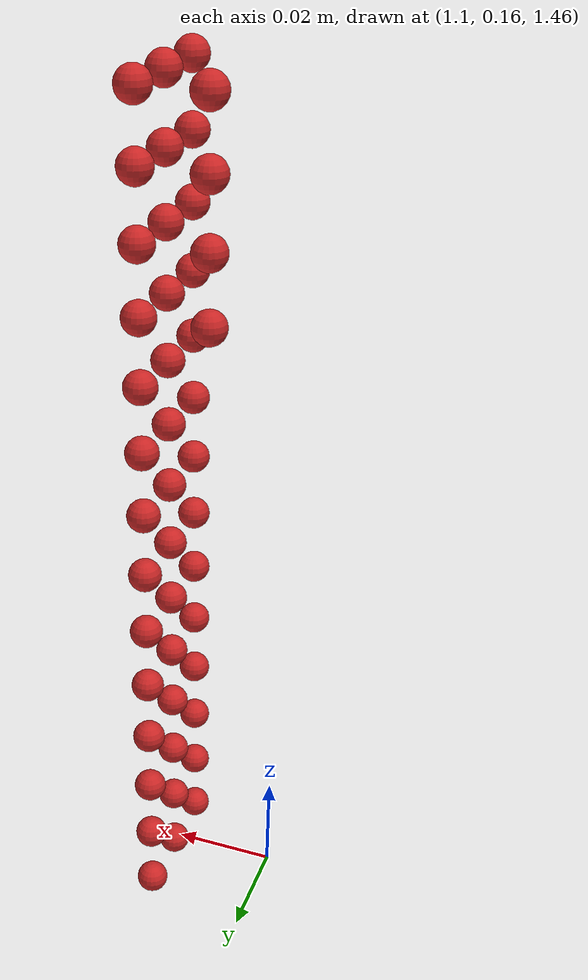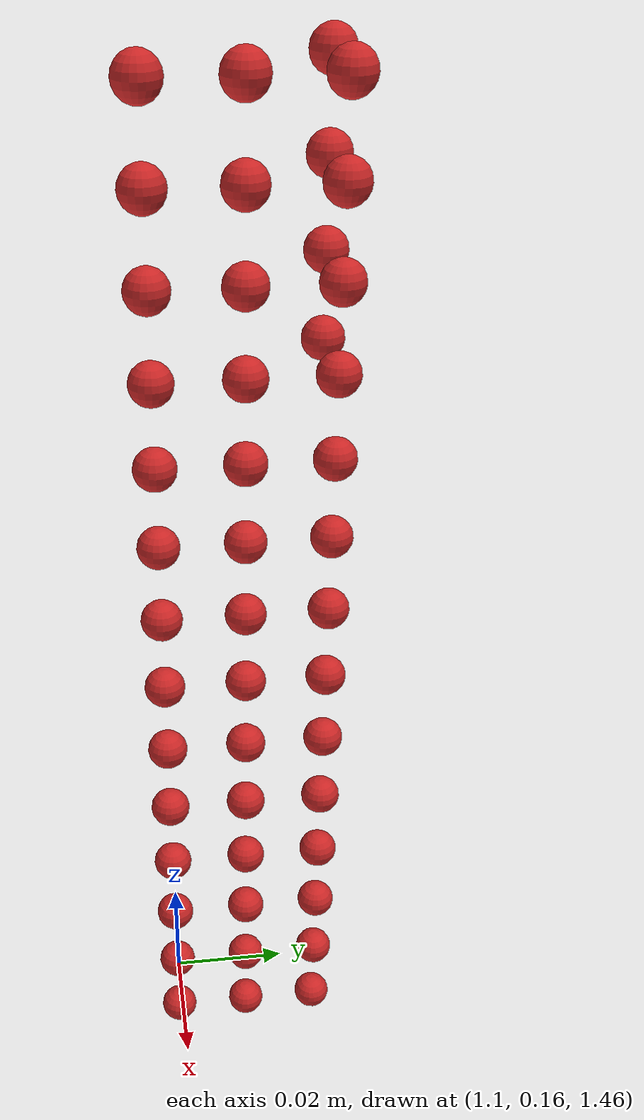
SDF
<sdf version="1.4">
 <world name="default">
  <model name="ground_plane">
   <static>1</static>
   <link name="link">
    <collision name="collision">
     <geometry><plane><normal>0 0 1</normal><size>100 100</size></plane></geometry>
     <surface><friction><ode><mu>100</mu><mu2>50</mu2></ode></friction></surface>
    </collision>
    <visual name="visual">
     <cast_shadows>0</cast_shadows>
     <geometry><plane><normal>0 0 1</normal><size>100 100</size></plane></geometry>
     <material>
      <script><uri>file://media/materials/scripts/gazebo.material</uri><name>Gazebo/Grey</name></script>
     </material>
    </visual>
    <velocity_decay><linear>0</linear><angular>0</angular></velocity_decay>
   </link>
  </model>
  <model name="sphere7">
   <pose>0.564545 0.085517 0.734885 0 0 0</pose>
   <link name="link">
    <pose>0.552545 0.073517 0.734885 0 0 0</pose>
    <inertial>
     <mass>0.001</mass>
     <inertia>
      <ixx>0.004</ixx>
      <ixy>0.000000</ixy>
      <ixz>0.000000</ixz>
      <iyy>0.004</iyy>
      <iyz>0.000000</iyz>
      <izz>0.004</izz>
     </inertia>
    </inertial>
    <collision name="collision">
     <surface>
      <contact><ode><kp>10000000000.000000</kp><kd>1</kd></ode></contact>
      <friction><ode><mu>0.01</mu><mu2>0.01</mu2></ode></friction>
     </surface>
     <geometry><sphere><radius>0.003</radius></sphere></geometry>
    </collision>
    <visual name="visual">
     <geometry><sphere><radius>0.003</radius></sphere></geometry>
     <material>
      <script><uri>file://media/materials/scripts/gazebo.material</uri><name>Gazebo/Red</name></script>
     </material>
    </visual>
   </link>
  </model>
  <model name="sphere11">
   <pose>0.564545 0.091517 0.734885 0 0 0</pose>
   <link name="link">
    <pose>0.552545 0.079517 0.734885 0 0 0</pose>
    <inertial>
     <mass>0.001</mass>
     <inertia>
      <ixx>0.004</ixx>
      <ixy>0.000000</ixy>
      <ixz>0.000000</ixz>
      <iyy>0.004</iyy>
      <iyz>0.000000</iyz>
      <izz>0.004</izz>
     </inertia>
    </inertial>
    <collision name="collision">
     <surface>
      <contact><ode><kp>10000000000.000000</kp><kd>1</kd></ode></contact>
      <friction><ode><mu>0.01</mu><mu2>0.01</mu2></ode></friction>
     </surface>
     <geometry><sphere><radius>0.003</radius></sphere></geometry>
    </collision>
    <visual name="visual">
     <geometry><sphere><radius>0.003</radius></sphere></geometry>
     <material>
      <script><uri>file://media/materials/scripts/gazebo.material</uri><name>Gazebo/Red</name></script>
     </material>
    </visual>
   </link>
  </model>
  <model name="sphere15">
   <pose>0.564545 0.097517 0.734885 0 0 0</pose>
   <link name="link">
    <pose>0.552545 0.085517 0.734885 0 0 0</pose>
    <inertial>
     <mass>0.001</mass>
     <inertia>
      <ixx>0.004</ixx>
      <ixy>0.000000</ixy>
      <ixz>0.000000</ixz>
      <iyy>0.004</iyy>
      <iyz>0.000000</iyz>
      <izz>0.004</izz>
     </inertia>
    </inertial>
    <collision name="collision">
     <surface>
      <contact><ode><kp>10000000000.000000</kp><kd>1</kd></ode></contact>
      <friction><ode><mu>0.01</mu><mu2>0.01</mu2></ode></friction>
     </surface>
     <geometry><sphere><radius>0.003</radius></sphere></geometry>
    </collision>
    <visual name="visual">
     <geometry><sphere><radius>0.003</radius></sphere></geometry>
     <material>
      <script><uri>file://media/materials/scripts/gazebo.material</uri><name>Gazebo/Red</name></script>
     </material>
    </visual>
   </link>
  </model>
  <model name="sphere23">
   <pose>0.564545 0.085517 0.740885 0 0 0</pose>
   <link name="link">
    <pose>0.552545 0.073517 0.740885 0 0 0</pose>
    <inertial>
     <mass>0.001</mass>
     <inertia>
      <ixx>0.004</ixx>
      <ixy>0.000000</ixy>
      <ixz>0.000000</ixz>
      <iyy>0.004</iyy>
      <iyz>0.000000</iyz>
      <izz>0.004</izz>
     </inertia>
    </inertial>
    <collision name="collision">
     <surface>
      <contact><ode><kp>10000000000.000000</kp><kd>1</kd></ode></contact>
      <friction><ode><mu>0.01</mu><mu2>0.01</mu2></ode></friction>
     </surface>
     <geometry><sphere><radius>0.003</radius></sphere></geometry>
    </collision>
    <visual name="visual">
     <geometry><sphere><radius>0.003</radius></sphere></geometry>
     <material>
      <script><uri>file://media/materials/scripts/gazebo.material</uri><name>Gazebo/Red</name></script>
     </material>
    </visual>
   </link>
  </model>
  <model name="sphere27">
   <pose>0.564545 0.091517 0.740885 0 0 0</pose>
   <link name="link">
    <pose>0.552545 0.079517 0.740885 0 0 0</pose>
    <inertial>
     <mass>0.001</mass>
     <inertia>
      <ixx>0.004</ixx>
      <ixy>0.000000</ixy>
      <ixz>0.000000</ixz>
      <iyy>0.004</iyy>
      <iyz>0.000000</iyz>
      <izz>0.004</izz>
     </inertia>
    </inertial>
    <collision name="collision">
     <surface>
      <contact><ode><kp>10000000000.000000</kp><kd>1</kd></ode></contact>
      <friction><ode><mu>0.01</mu><mu2>0.01</mu2></ode></friction>
     </surface>
     <geometry><sphere><radius>0.003</radius></sphere></geometry>
    </collision>
    <visual name="visual">
     <geometry><sphere><radius>0.003</radius></sphere></geometry>
     <material>
      <script><uri>file://media/materials/scripts/gazebo.material</uri><name>Gazebo/Red</name></script>
     </material>
    </visual>
   </link>
  </model>
  <model name="sphere31">
   <pose>0.564545 0.097517 0.740885 0 0 0</pose>
   <link name="link">
    <pose>0.552545 0.085517 0.740885 0 0 0</pose>
    <inertial>
     <mass>0.001</mass>
     <inertia>
      <ixx>0.004</ixx>
      <ixy>0.000000</ixy>
      <ixz>0.000000</ixz>
      <iyy>0.004</iyy>
      <iyz>0.000000</iyz>
      <izz>0.004</izz>
     </inertia>
    </inertial>
    <collision name="collision">
     <surface>
      <contact><ode><kp>10000000000.000000</kp><kd>1</kd></ode></contact>
      <friction><ode><mu>0.01</mu><mu2>0.01</mu2></ode></friction>
     </surface>
     <geometry><sphere><radius>0.003</radius></sphere></geometry>
    </collision>
    <visual name="visual">
     <geometry><sphere><radius>0.003</radius></sphere></geometry>
     <material>
      <script><uri>file://media/materials/scripts/gazebo.material</uri><name>Gazebo/Red</name></script>
     </material>
    </visual>
   </link>
  </model>
  <model name="sphere39">
   <pose>0.564545 0.085517 0.746885 0 0 0</pose>
   <link name="link">
    <pose>0.552545 0.073517 0.746885 0 0 0</pose>
    <inertial>
     <mass>0.001</mass>
     <inertia>
      <ixx>0.004</ixx>
      <ixy>0.000000</ixy>
      <ixz>0.000000</ixz>
      <iyy>0.004</iyy>
      <iyz>0.000000</iyz>
      <izz>0.004</izz>
     </inertia>
    </inertial>
    <collision name="collision">
     <surface>
      <contact><ode><kp>10000000000.000000</kp><kd>1</kd></ode></contact>
      <friction><ode><mu>0.01</mu><mu2>0.01</mu2></ode></friction>
     </surface>
     <geometry><sphere><radius>0.003</radius></sphere></geometry>
    </collision>
    <visual name="visual">
     <geometry><sphere><radius>0.003</radius></sphere></geometry>
     <material>
      <script><uri>file://media/materials/scripts/gazebo.material</uri><name>Gazebo/Red</name></script>
     </material>
    </visual>
   </link>
  </model>
  <model name="sphere43">
   <pose>0.564545 0.091517 0.746885 0 0 0</pose>
   <link name="link">
    <pose>0.552545 0.079517 0.746885 0 0 0</pose>
    <inertial>
     <mass>0.001</mass>
     <inertia>
      <ixx>0.004</ixx>
      <ixy>0.000000</ixy>
      <ixz>0.000000</ixz>
      <iyy>0.004</iyy>
      <iyz>0.000000</iyz>
      <izz>0.004</izz>
     </inertia>
    </inertial>
    <collision name="collision">
     <surface>
      <contact><ode><kp>10000000000.000000</kp><kd>1</kd></ode></contact>
      <friction><ode><mu>0.01</mu><mu2>0.01</mu2></ode></friction>
     </surface>
     <geometry><sphere><radius>0.003</radius></sphere></geometry>
    </collision>
    <visual name="visual">
     <geometry><sphere><radius>0.003</radius></sphere></geometry>
     <material>
      <script><uri>file://media/materials/scripts/gazebo.material</uri><name>Gazebo/Red</name></script>
     </material>
    </visual>
   </link>
  </model>
  <model name="sphere47">
   <pose>0.564545 0.097517 0.746885 0 0 0</pose>
   <link name="link">
    <pose>0.552545 0.085517 0.746885 0 0 0</pose>
    <inertial>
     <mass>0.001</mass>
     <inertia>
      <ixx>0.004</ixx>
      <ixy>0.000000</ixy>
      <ixz>0.000000</ixz>
      <iyy>0.004</iyy>
      <iyz>0.000000</iyz>
      <izz>0.004</izz>
     </inertia>
    </inertial>
    <collision name="collision">
     <surface>
      <contact><ode><kp>10000000000.000000</kp><kd>1</kd></ode></contact>
      <friction><ode><mu>0.01</mu><mu2>0.01</mu2></ode></friction>
     </surface>
     <geometry><sphere><radius>0.003</radius></sphere></geometry>
    </collision>
    <visual name="visual">
     <geometry><sphere><radius>0.003</radius></sphere></geometry>
     <material>
      <script><uri>file://media/materials/scripts/gazebo.material</uri><name>Gazebo/Red</name></script>
     </material>
    </visual>
   </link>
  </model>
  <model name="sphere55">
   <pose>0.564545 0.085517 0.752885 0 0 0</pose>
   <link name="link">
    <pose>0.552545 0.073517 0.752885 0 0 0</pose>
    <inertial>
     <mass>0.001</mass>
     <inertia>
      <ixx>0.004</ixx>
      <ixy>0.000000</ixy>
      <ixz>0.000000</ixz>
      <iyy>0.004</iyy>
      <iyz>0.000000</iyz>
      <izz>0.004</izz>
     </inertia>
    </inertial>
    <collision name="collision">
     <surface>
      <contact><ode><kp>10000000000.000000</kp><kd>1</kd></ode></contact>
      <friction><ode><mu>0.01</mu><mu2>0.01</mu2></ode></friction>
     </surface>
     <geometry><sphere><radius>0.003</radius></sphere></geometry>
    </collision>
    <visual name="visual">
     <geometry><sphere><radius>0.003</radius></sphere></geometry>
     <material>
      <script><uri>file://media/materials/scripts/gazebo.material</uri><name>Gazebo/Red</name></script>
     </material>
    </visual>
   </link>
  </model>
  <model name="sphere59">
   <pose>0.564545 0.091517 0.752885 0 0 0</pose>
   <link name="link">
    <pose>0.552545 0.079517 0.752885 0 0 0</pose>
    <inertial>
     <mass>0.001</mass>
     <inertia>
      <ixx>0.004</ixx>
      <ixy>0.000000</ixy>
      <ixz>0.000000</ixz>
      <iyy>0.004</iyy>
      <iyz>0.000000</iyz>
      <izz>0.004</izz>
     </inertia>
    </inertial>
    <collision name="collision">
     <surface>
      <contact><ode><kp>10000000000.000000</kp><kd>1</kd></ode></contact>
      <friction><ode><mu>0.01</mu><mu2>0.01</mu2></ode></friction>
     </surface>
     <geometry><sphere><radius>0.003</radius></sphere></geometry>
    </collision>
    <visual name="visual">
     <geometry><sphere><radius>0.003</radius></sphere></geometry>
     <material>
      <script><uri>file://media/materials/scripts/gazebo.material</uri><name>Gazebo/Red</name></script>
     </material>
    </visual>
   </link>
  </model>
  <model name="sphere63">
   <pose>0.564545 0.097517 0.752885 0 0 0</pose>
   <link name="link">
    <pose>0.552545 0.085517 0.752885 0 0 0</pose>
    <inertial>
     <mass>0.001</mass>
     <inertia>
      <ixx>0.004</ixx>
      <ixy>0.000000</ixy>
      <ixz>0.000000</ixz>
      <iyy>0.004</iyy>
      <iyz>0.000000</iyz>
      <izz>0.004</izz>
     </inertia>
    </inertial>
    <collision name="collision">
     <surface>
      <contact><ode><kp>10000000000.000000</kp><kd>1</kd></ode></contact>
      <friction><ode><mu>0.01</mu><mu2>0.01</mu2></ode></friction>
     </surface>
     <geometry><sphere><radius>0.003</radius></sphere></geometry>
    </collision>
    <visual name="visual">
     <geometry><sphere><radius>0.003</radius></sphere></geometry>
     <material>
      <script><uri>file://media/materials/scripts/gazebo.material</uri><name>Gazebo/Red</name></script>
     </material>
    </visual>
   </link>
  </model>
  <model name="sphere71">
   <pose>0.564545 0.085517 0.758885 0 0 0</pose>
   <link name="link">
    <pose>0.552545 0.073517 0.758885 0 0 0</pose>
    <inertial>
     <mass>0.001</mass>
     <inertia>
      <ixx>0.004</ixx>
      <ixy>0.000000</ixy>
      <ixz>0.000000</ixz>
      <iyy>0.004</iyy>
      <iyz>0.000000</iyz>
      <izz>0.004</izz>
     </inertia>
    </inertial>
    <collision name="collision">
     <surface>
      <contact><ode><kp>10000000000.000000</kp><kd>1</kd></ode></contact>
      <friction><ode><mu>0.01</mu><mu2>0.01</mu2></ode></friction>
     </surface>
     <geometry><sphere><radius>0.003</radius></sphere></geometry>
    </collision>
    <visual name="visual">
     <geometry><sphere><radius>0.003</radius></sphere></geometry>
     <material>
      <script><uri>file://media/materials/scripts/gazebo.material</uri><name>Gazebo/Red</name></script>
     </material>
    </visual>
   </link>
  </model>
  <model name="sphere75">
   <pose>0.564545 0.091517 0.758885 0 0 0</pose>
   <link name="link">
    <pose>0.552545 0.079517 0.758885 0 0 0</pose>
    <inertial>
     <mass>0.001</mass>
     <inertia>
      <ixx>0.004</ixx>
      <ixy>0.000000</ixy>
      <ixz>0.000000</ixz>
      <iyy>0.004</iyy>
      <iyz>0.000000</iyz>
      <izz>0.004</izz>
     </inertia>
    </inertial>
    <collision name="collision">
     <surface>
      <contact><ode><kp>10000000000.000000</kp><kd>1</kd></ode></contact>
      <friction><ode><mu>0.01</mu><mu2>0.01</mu2></ode></friction>
     </surface>
     <geometry><sphere><radius>0.003</radius></sphere></geometry>
    </collision>
    <visual name="visual">
     <geometry><sphere><radius>0.003</radius></sphere></geometry>
     <material>
      <script><uri>file://media/materials/scripts/gazebo.material</uri><name>Gazebo/Red</name></script>
     </material>
    </visual>
   </link>
  </model>
  <model name="sphere79">
   <pose>0.564545 0.097517 0.758885 0 0 0</pose>
   <link name="link">
    <pose>0.552545 0.085517 0.758885 0 0 0</pose>
    <inertial>
     <mass>0.001</mass>
     <inertia>
      <ixx>0.004</ixx>
      <ixy>0.000000</ixy>
      <ixz>0.000000</ixz>
      <iyy>0.004</iyy>
      <iyz>0.000000</iyz>
      <izz>0.004</izz>
     </inertia>
    </inertial>
    <collision name="collision">
     <surface>
      <contact><ode><kp>10000000000.000000</kp><kd>1</kd></ode></contact>
      <friction><ode><mu>0.01</mu><mu2>0.01</mu2></ode></friction>
     </surface>
     <geometry><sphere><radius>0.003</radius></sphere></geometry>
    </collision>
    <visual name="visual">
     <geometry><sphere><radius>0.003</radius></sphere></geometry>
     <material>
      <script><uri>file://media/materials/scripts/gazebo.material</uri><name>Gazebo/Red</name></script>
     </material>
    </visual>
   </link>
  </model>
  <model name="sphere87">
   <pose>0.564545 0.085517 0.764885 0 0 0</pose>
   <link name="link">
    <pose>0.552545 0.073517 0.764885 0 0 0</pose>
    <inertial>
     <mass>0.001</mass>
     <inertia>
      <ixx>0.004</ixx>
      <ixy>0.000000</ixy>
      <ixz>0.000000</ixz>
      <iyy>0.004</iyy>
      <iyz>0.000000</iyz>
      <izz>0.004</izz>
     </inertia>
    </inertial>
    <collision name="collision">
     <surface>
      <contact><ode><kp>10000000000.000000</kp><kd>1</kd></ode></contact>
      <friction><ode><mu>0.01</mu><mu2>0.01</mu2></ode></friction>
     </surface>
     <geometry><sphere><radius>0.003</radius></sphere></geometry>
    </collision>
    <visual name="visual">
     <geometry><sphere><radius>0.003</radius></sphere></geometry>
     <material>
      <script><uri>file://media/materials/scripts/gazebo.material</uri><name>Gazebo/Red</name></script>
     </material>
    </visual>
   </link>
  </model>
  <model name="sphere91">
   <pose>0.564545 0.091517 0.764885 0 0 0</pose>
   <link name="link">
    <pose>0.552545 0.079517 0.764885 0 0 0</pose>
    <inertial>
     <mass>0.001</mass>
     <inertia>
      <ixx>0.004</ixx>
      <ixy>0.000000</ixy>
      <ixz>0.000000</ixz>
      <iyy>0.004</iyy>
      <iyz>0.000000</iyz>
      <izz>0.004</izz>
     </inertia>
    </inertial>
    <collision name="collision">
     <surface>
      <contact><ode><kp>10000000000.000000</kp><kd>1</kd></ode></contact>
      <friction><ode><mu>0.01</mu><mu2>0.01</mu2></ode></friction>
     </surface>
     <geometry><sphere><radius>0.003</radius></sphere></geometry>
    </collision>
    <visual name="visual">
     <geometry><sphere><radius>0.003</radius></sphere></geometry>
     <material>
      <script><uri>file://media/materials/scripts/gazebo.material</uri><name>Gazebo/Red</name></script>
     </material>
    </visual>
   </link>
  </model>
  <model name="sphere95">
   <pose>0.564545 0.097517 0.764885 0 0 0</pose>
   <link name="link">
    <pose>0.552545 0.085517 0.764885 0 0 0</pose>
    <inertial>
     <mass>0.001</mass>
     <inertia>
      <ixx>0.004</ixx>
      <ixy>0.000000</ixy>
      <ixz>0.000000</ixz>
      <iyy>0.004</iyy>
      <iyz>0.000000</iyz>
      <izz>0.004</izz>
     </inertia>
    </inertial>
    <collision name="collision">
     <surface>
      <contact><ode><kp>10000000000.000000</kp><kd>1</kd></ode></contact>
      <friction><ode><mu>0.01</mu><mu2>0.01</mu2></ode></friction>
     </surface>
     <geometry><sphere><radius>0.003</radius></sphere></geometry>
    </collision>
    <visual name="visual">
     <geometry><sphere><radius>0.003</radius></sphere></geometry>
     <material>
      <script><uri>file://media/materials/scripts/gazebo.material</uri><name>Gazebo/Red</name></script>
     </material>
    </visual>
   </link>
  </model>
  <model name="sphere103">
   <pose>0.564545 0.085517 0.770885 0 0 0</pose>
   <link name="link">
    <pose>0.552545 0.073517 0.770885 0 0 0</pose>
    <inertial>
     <mass>0.001</mass>
     <inertia>
      <ixx>0.004</ixx>
      <ixy>0.000000</ixy>
      <ixz>0.000000</ixz>
      <iyy>0.004</iyy>
      <iyz>0.000000</iyz>
      <izz>0.004</izz>
     </inertia>
    </inertial>
    <collision name="collision">
     <surface>
      <contact><ode><kp>10000000000.000000</kp><kd>1</kd></ode></contact>
      <friction><ode><mu>0.01</mu><mu2>0.01</mu2></ode></friction>
     </surface>
     <geometry><sphere><radius>0.003</radius></sphere></geometry>
    </collision>
    <visual name="visual">
     <geometry><sphere><radius>0.003</radius></sphere></geometry>
     <material>
      <script><uri>file://media/materials/scripts/gazebo.material</uri><name>Gazebo/Red</name></script>
     </material>
    </visual>
   </link>
  </model>
  <model name="sphere107">
   <pose>0.564545 0.091517 0.770885 0 0 0</pose>
   <link name="link">
    <pose>0.552545 0.079517 0.770885 0 0 0</pose>
    <inertial>
     <mass>0.001</mass>
     <inertia>
      <ixx>0.004</ixx>
      <ixy>0.000000</ixy>
      <ixz>0.000000</ixz>
      <iyy>0.004</iyy>
      <iyz>0.000000</iyz>
      <izz>0.004</izz>
     </inertia>
    </inertial>
    <collision name="collision">
     <surface>
      <contact><ode><kp>10000000000.000000</kp><kd>1</kd></ode></contact>
      <friction><ode><mu>0.01</mu><mu2>0.01</mu2></ode></friction>
     </surface>
     <geometry><sphere><radius>0.003</radius></sphere></geometry>
    </collision>
    <visual name="visual">
     <geometry><sphere><radius>0.003</radius></sphere></geometry>
     <material>
      <script><uri>file://media/materials/scripts/gazebo.material</uri><name>Gazebo/Red</name></script>
     </material>
    </visual>
   </link>
  </model>
  <model name="sphere111">
   <pose>0.564545 0.097517 0.770885 0 0 0</pose>
   <link name="link">
    <pose>0.552545 0.085517 0.770885 0 0 0</pose>
    <inertial>
     <mass>0.001</mass>
     <inertia>
      <ixx>0.004</ixx>
      <ixy>0.000000</ixy>
      <ixz>0.000000</ixz>
      <iyy>0.004</iyy>
      <iyz>0.000000</iyz>
      <izz>0.004</izz>
     </inertia>
    </inertial>
    <collision name="collision">
     <surface>
      <contact><ode><kp>10000000000.000000</kp><kd>1</kd></ode></contact>
      <friction><ode><mu>0.01</mu><mu2>0.01</mu2></ode></friction>
     </surface>
     <geometry><sphere><radius>0.003</radius></sphere></geometry>
    </collision>
    <visual name="visual">
     <geometry><sphere><radius>0.003</radius></sphere></geometry>
     <material>
      <script><uri>file://media/materials/scripts/gazebo.material</uri><name>Gazebo/Red</name></script>
     </material>
    </visual>
   </link>
  </model>
  <model name="sphere119">
   <pose>0.564545 0.085517 0.776885 0 0 0</pose>
   <link name="link">
    <pose>0.552545 0.073517 0.776885 0 0 0</pose>
    <inertial>
     <mass>0.001</mass>
     <inertia>
      <ixx>0.004</ixx>
      <ixy>0.000000</ixy>
      <ixz>0.000000</ixz>
      <iyy>0.004</iyy>
      <iyz>0.000000</iyz>
      <izz>0.004</izz>
     </inertia>
    </inertial>
    <collision name="collision">
     <surface>
      <contact><ode><kp>10000000000.000000</kp><kd>1</kd></ode></contact>
      <friction><ode><mu>0.01</mu><mu2>0.01</mu2></ode></friction>
     </surface>
     <geometry><sphere><radius>0.003</radius></sphere></geometry>
    </collision>
    <visual name="visual">
     <geometry><sphere><radius>0.003</radius></sphere></geometry>
     <material>
      <script><uri>file://media/materials/scripts/gazebo.material</uri><name>Gazebo/Red</name></script>
     </material>
    </visual>
   </link>
  </model>
  <model name="sphere123">
   <pose>0.564545 0.091517 0.776885 0 0 0</pose>
   <link name="link">
    <pose>0.552545 0.079517 0.776885 0 0 0</pose>
    <inertial>
     <mass>0.001</mass>
     <inertia>
      <ixx>0.004</ixx>
      <ixy>0.000000</ixy>
      <ixz>0.000000</ixz>
      <iyy>0.004</iyy>
      <iyz>0.000000</iyz>
      <izz>0.004</izz>
     </inertia>
    </inertial>
    <collision name="collision">
     <surface>
      <contact><ode><kp>10000000000.000000</kp><kd>1</kd></ode></contact>
      <friction><ode><mu>0.01</mu><mu2>0.01</mu2></ode></friction>
     </surface>
     <geometry><sphere><radius>0.003</radius></sphere></geometry>
    </collision>
    <visual name="visual">
     <geometry><sphere><radius>0.003</radius></sphere></geometry>
     <material>
      <script><uri>file://media/materials/scripts/gazebo.material</uri><name>Gazebo/Red</name></script>
     </material>
    </visual>
   </link>
  </model>
  <model name="sphere127">
   <pose>0.564545 0.097517 0.776885 0 0 0</pose>
   <link name="link">
    <pose>0.552545 0.085517 0.776885 0 0 0</pose>
    <inertial>
     <mass>0.001</mass>
     <inertia>
      <ixx>0.004</ixx>
      <ixy>0.000000</ixy>
      <ixz>0.000000</ixz>
      <iyy>0.004</iyy>
      <iyz>0.000000</iyz>
      <izz>0.004</izz>
     </inertia>
    </inertial>
    <collision name="collision">
     <surface>
      <contact><ode><kp>10000000000.000000</kp><kd>1</kd></ode></contact>
      <friction><ode><mu>0.01</mu><mu2>0.01</mu2></ode></friction>
     </surface>
     <geometry><sphere><radius>0.003</radius></sphere></geometry>
    </collision>
    <visual name="visual">
     <geometry><sphere><radius>0.003</radius></sphere></geometry>
     <material>
      <script><uri>file://media/materials/scripts/gazebo.material</uri><name>Gazebo/Red</name></script>
     </material>
    </visual>
   </link>
  </model>
  <model name="sphere135">
   <pose>0.564545 0.085517 0.782885 0 0 0</pose>
   <link name="link">
    <pose>0.552545 0.073517 0.782885 0 0 0</pose>
    <inertial>
     <mass>0.001</mass>
     <inertia>
      <ixx>0.004</ixx>
      <ixy>0.000000</ixy>
      <ixz>0.000000</ixz>
      <iyy>0.004</iyy>
      <iyz>0.000000</iyz>
      <izz>0.004</izz>
     </inertia>
    </inertial>
    <collision name="collision">
     <surface>
      <contact><ode><kp>10000000000.000000</kp><kd>1</kd></ode></contact>
      <friction><ode><mu>0.01</mu><mu2>0.01</mu2></ode></friction>
     </surface>
     <geometry><sphere><radius>0.003</radius></sphere></geometry>
    </collision>
    <visual name="visual">
     <geometry><sphere><radius>0.003</radius></sphere></geometry>
     <material>
      <script><uri>file://media/materials/scripts/gazebo.material</uri><name>Gazebo/Red</name></script>
     </material>
    </visual>
   </link>
  </model>
  <model name="sphere139">
   <pose>0.564545 0.091517 0.782885 0 0 0</pose>
   <link name="link">
    <pose>0.552545 0.079517 0.782885 0 0 0</pose>
    <inertial>
     <mass>0.001</mass>
     <inertia>
      <ixx>0.004</ixx>
      <ixy>0.000000</ixy>
      <ixz>0.000000</ixz>
      <iyy>0.004</iyy>
      <iyz>0.000000</iyz>
      <izz>0.004</izz>
     </inertia>
    </inertial>
    <collision name="collision">
     <surface>
      <contact><ode><kp>10000000000.000000</kp><kd>1</kd></ode></contact>
      <friction><ode><mu>0.01</mu><mu2>0.01</mu2></ode></friction>
     </surface>
     <geometry><sphere><radius>0.003</radius></sphere></geometry>
    </collision>
    <visual name="visual">
     <geometry><sphere><radius>0.003</radius></sphere></geometry>
     <material>
      <script><uri>file://media/materials/scripts/gazebo.material</uri><name>Gazebo/Red</name></script>
     </material>
    </visual>
   </link>
  </model>
  <model name="sphere143">
   <pose>0.564545 0.097517 0.782885 0 0 0</pose>
   <link name="link">
    <pose>0.552545 0.085517 0.782885 0 0 0</pose>
    <inertial>
     <mass>0.001</mass>
     <inertia>
      <ixx>0.004</ixx>
      <ixy>0.000000</ixy>
      <ixz>0.000000</ixz>
      <iyy>0.004</iyy>
      <iyz>0.000000</iyz>
      <izz>0.004</izz>
     </inertia>
    </inertial>
    <collision name="collision">
     <surface>
      <contact><ode><kp>10000000000.000000</kp><kd>1</kd></ode></contact>
      <friction><ode><mu>0.01</mu><mu2>0.01</mu2></ode></friction>
     </surface>
     <geometry><sphere><radius>0.003</radius></sphere></geometry>
    </collision>
    <visual name="visual">
     <geometry><sphere><radius>0.003</radius></sphere></geometry>
     <material>
      <script><uri>file://media/materials/scripts/gazebo.material</uri><name>Gazebo/Red</name></script>
     </material>
    </visual>
   </link>
  </model>
  <model name="sphere151">
   <pose>0.564545 0.085517 0.788885 0 0 0</pose>
   <link name="link">
    <pose>0.552545 0.073517 0.788885 0 0 0</pose>
    <inertial>
     <mass>0.001</mass>
     <inertia>
      <ixx>0.004</ixx>
      <ixy>0.000000</ixy>
      <ixz>0.000000</ixz>
      <iyy>0.004</iyy>
      <iyz>0.000000</iyz>
      <izz>0.004</izz>
     </inertia>
    </inertial>
    <collision name="collision">
     <surface>
      <contact><ode><kp>10000000000.000000</kp><kd>1</kd></ode></contact>
      <friction><ode><mu>0.01</mu><mu2>0.01</mu2></ode></friction>
     </surface>
     <geometry><sphere><radius>0.003</radius></sphere></geometry>
    </collision>
    <visual name="visual">
     <geometry><sphere><radius>0.003</radius></sphere></geometry>
     <material>
      <script><uri>file://media/materials/scripts/gazebo.material</uri><name>Gazebo/Red</name></script>
     </material>
    </visual>
   </link>
  </model>
  <model name="sphere155">
   <pose>0.564545 0.091517 0.788885 0 0 0</pose>
   <link name="link">
    <pose>0.552545 0.079517 0.788885 0 0 0</pose>
    <inertial>
     <mass>0.001</mass>
     <inertia>
      <ixx>0.004</ixx>
      <ixy>0.000000</ixy>
      <ixz>0.000000</ixz>
      <iyy>0.004</iyy>
      <iyz>0.000000</iyz>
      <izz>0.004</izz>
     </inertia>
    </inertial>
    <collision name="collision">
     <surface>
      <contact><ode><kp>10000000000.000000</kp><kd>1</kd></ode></contact>
      <friction><ode><mu>0.01</mu><mu2>0.01</mu2></ode></friction>
     </surface>
     <geometry><sphere><radius>0.003</radius></sphere></geometry>
    </collision>
    <visual name="visual">
     <geometry><sphere><radius>0.003</radius></sphere></geometry>
     <material>
      <script><uri>file://media/materials/scripts/gazebo.material</uri><name>Gazebo/Red</name></script>
     </material>
    </visual>
   </link>
  </model>
  <model name="sphere159">
   <pose>0.564545 0.097517 0.788885 0 0 0</pose>
   <link name="link">
    <pose>0.552545 0.085517 0.788885 0 0 0</pose>
    <inertial>
     <mass>0.001</mass>
     <inertia>
      <ixx>0.004</ixx>
      <ixy>0.000000</ixy>
      <ixz>0.000000</ixz>
      <iyy>0.004</iyy>
      <iyz>0.000000</iyz>
      <izz>0.004</izz>
     </inertia>
    </inertial>
    <collision name="collision">
     <surface>
      <contact><ode><kp>10000000000.000000</kp><kd>1</kd></ode></contact>
      <friction><ode><mu>0.01</mu><mu2>0.01</mu2></ode></friction>
     </surface>
     <geometry><sphere><radius>0.003</radius></sphere></geometry>
    </collision>
    <visual name="visual">
     <geometry><sphere><radius>0.003</radius></sphere></geometry>
     <material>
      <script><uri>file://media/materials/scripts/gazebo.material</uri><name>Gazebo/Red</name></script>
     </material>
    </visual>
   </link>
  </model>
  <model name="sphere167">
   <pose>0.564545 0.085517 0.794885 0 0 0</pose>
   <link name="link">
    <pose>0.552545 0.073517 0.794885 0 0 0</pose>
    <inertial>
     <mass>0.001</mass>
     <inertia>
      <ixx>0.004</ixx>
      <ixy>0.000000</ixy>
      <ixz>0.000000</ixz>
      <iyy>0.004</iyy>
      <iyz>0.000000</iyz>
      <izz>0.004</izz>
     </inertia>
    </inertial>
    <collision name="collision">
     <surface>
      <contact><ode><kp>10000000000.000000</kp><kd>1</kd></ode></contact>
      <friction><ode><mu>0.01</mu><mu2>0.01</mu2></ode></friction>
     </surface>
     <geometry><sphere><radius>0.003</radius></sphere></geometry>
    </collision>
    <visual name="visual">
     <geometry><sphere><radius>0.003</radius></sphere></geometry>
     <material>
      <script><uri>file://media/materials/scripts/gazebo.material</uri><name>Gazebo/Red</name></script>
     </material>
    </visual>
   </link>
  </model>
  <model name="sphere171">
   <pose>0.564545 0.091517 0.794885 0 0 0</pose>
   <link name="link">
    <pose>0.552545 0.079517 0.794885 0 0 0</pose>
    <inertial>
     <mass>0.001</mass>
     <inertia>
      <ixx>0.004</ixx>
      <ixy>0.000000</ixy>
      <ixz>0.000000</ixz>
      <iyy>0.004</iyy>
      <iyz>0.000000</iyz>
      <izz>0.004</izz>
     </inertia>
    </inertial>
    <collision name="collision">
     <surface>
      <contact><ode><kp>10000000000.000000</kp><kd>1</kd></ode></contact>
      <friction><ode><mu>0.01</mu><mu2>0.01</mu2></ode></friction>
     </surface>
     <geometry><sphere><radius>0.003</radius></sphere></geometry>
    </collision>
    <visual name="visual">
     <geometry><sphere><radius>0.003</radius></sphere></geometry>
     <material>
      <script><uri>file://media/materials/scripts/gazebo.material</uri><name>Gazebo/Red</name></script>
     </material>
    </visual>
   </link>
  </model>
  <model name="sphere174">
   <pose>0.558545 0.097517 0.794885 0 0 0</pose>
   <link name="link">
    <pose>0.546545 0.085517 0.794885 0 0 0</pose>
    <inertial>
     <mass>0.001</mass>
     <inertia>
      <ixx>0.004</ixx>
      <ixy>0.000000</ixy>
      <ixz>0.000000</ixz>
      <iyy>0.004</iyy>
      <iyz>0.000000</iyz>
      <izz>0.004</izz>
     </inertia>
    </inertial>
    <collision name="collision">
     <surface>
      <contact><ode><kp>10000000000.000000</kp><kd>1</kd></ode></contact>
      <friction><ode><mu>0.01</mu><mu2>0.01</mu2></ode></friction>
     </surface>
     <geometry><sphere><radius>0.003</radius></sphere></geometry>
    </collision>
    <visual name="visual">
     <geometry><sphere><radius>0.003</radius></sphere></geometry>
     <material>
      <script><uri>file://media/materials/scripts/gazebo.material</uri><name>Gazebo/Red</name></script>
     </material>
    </visual>
   </link>
  </model>
  <model name="sphere175">
   <pose>0.564545 0.097517 0.794885 0 0 0</pose>
   <link name="link">
    <pose>0.552545 0.085517 0.794885 0 0 0</pose>
    <inertial>
     <mass>0.001</mass>
     <inertia>
      <ixx>0.004</ixx>
      <ixy>0.000000</ixy>
      <ixz>0.000000</ixz>
      <iyy>0.004</iyy>
      <iyz>0.000000</iyz>
      <izz>0.004</izz>
     </inertia>
    </inertial>
    <collision name="collision">
     <surface>
      <contact><ode><kp>10000000000.000000</kp><kd>1</kd></ode></contact>
      <friction><ode><mu>0.01</mu><mu2>0.01</mu2></ode></friction>
     </surface>
     <geometry><sphere><radius>0.003</radius></sphere></geometry>
    </collision>
    <visual name="visual">
     <geometry><sphere><radius>0.003</radius></sphere></geometry>
     <material>
      <script><uri>file://media/materials/scripts/gazebo.material</uri><name>Gazebo/Red</name></script>
     </material>
    </visual>
   </link>
  </model>
  <model name="sphere183">
   <pose>0.564545 0.085517 0.800885 0 0 0</pose>
   <link name="link">
    <pose>0.552545 0.073517 0.800885 0 0 0</pose>
    <inertial>
     <mass>0.001</mass>
     <inertia>
      <ixx>0.004</ixx>
      <ixy>0.000000</ixy>
      <ixz>0.000000</ixz>
      <iyy>0.004</iyy>
      <iyz>0.000000</iyz>
      <izz>0.004</izz>
     </inertia>
    </inertial>
    <collision name="collision">
     <surface>
      <contact><ode><kp>10000000000.000000</kp><kd>1</kd></ode></contact>
      <friction><ode><mu>0.01</mu><mu2>0.01</mu2></ode></friction>
     </surface>
     <geometry><sphere><radius>0.003</radius></sphere></geometry>
    </collision>
    <visual name="visual">
     <geometry><sphere><radius>0.003</radius></sphere></geometry>
     <material>
      <script><uri>file://media/materials/scripts/gazebo.material</uri><name>Gazebo/Red</name></script>
     </material>
    </visual>
   </link>
  </model>
  <model name="sphere187">
   <pose>0.564545 0.091517 0.800885 0 0 0</pose>
   <link name="link">
    <pose>0.552545 0.079517 0.800885 0 0 0</pose>
    <inertial>
     <mass>0.001</mass>
     <inertia>
      <ixx>0.004</ixx>
      <ixy>0.000000</ixy>
      <ixz>0.000000</ixz>
      <iyy>0.004</iyy>
      <iyz>0.000000</iyz>
      <izz>0.004</izz>
     </inertia>
    </inertial>
    <collision name="collision">
     <surface>
      <contact><ode><kp>10000000000.000000</kp><kd>1</kd></ode></contact>
      <friction><ode><mu>0.01</mu><mu2>0.01</mu2></ode></friction>
     </surface>
     <geometry><sphere><radius>0.003</radius></sphere></geometry>
    </collision>
    <visual name="visual">
     <geometry><sphere><radius>0.003</radius></sphere></geometry>
     <material>
      <script><uri>file://media/materials/scripts/gazebo.material</uri><name>Gazebo/Red</name></script>
     </material>
    </visual>
   </link>
  </model>
  <model name="sphere190">
   <pose>0.558545 0.097517 0.800885 0 0 0</pose>
   <link name="link">
    <pose>0.546545 0.085517 0.800885 0 0 0</pose>
    <inertial>
     <mass>0.001</mass>
     <inertia>
      <ixx>0.004</ixx>
      <ixy>0.000000</ixy>
      <ixz>0.000000</ixz>
      <iyy>0.004</iyy>
      <iyz>0.000000</iyz>
      <izz>0.004</izz>
     </inertia>
    </inertial>
    <collision name="collision">
     <surface>
      <contact><ode><kp>10000000000.000000</kp><kd>1</kd></ode></contact>
      <friction><ode><mu>0.01</mu><mu2>0.01</mu2></ode></friction>
     </surface>
     <geometry><sphere><radius>0.003</radius></sphere></geometry>
    </collision>
    <visual name="visual">
     <geometry><sphere><radius>0.003</radius></sphere></geometry>
     <material>
      <script><uri>file://media/materials/scripts/gazebo.material</uri><name>Gazebo/Red</name></script>
     </material>
    </visual>
   </link>
  </model>
  <model name="sphere191">
   <pose>0.564545 0.097517 0.800885 0 0 0</pose>
   <link name="link">
    <pose>0.552545 0.085517 0.800885 0 0 0</pose>
    <inertial>
     <mass>0.001</mass>
     <inertia>
      <ixx>0.004</ixx>
      <ixy>0.000000</ixy>
      <ixz>0.000000</ixz>
      <iyy>0.004</iyy>
      <iyz>0.000000</iyz>
      <izz>0.004</izz>
     </inertia>
    </inertial>
    <collision name="collision">
     <surface>
      <contact><ode><kp>10000000000.000000</kp><kd>1</kd></ode></contact>
      <friction><ode><mu>0.01</mu><mu2>0.01</mu2></ode></friction>
     </surface>
     <geometry><sphere><radius>0.003</radius></sphere></geometry>
    </collision>
    <visual name="visual">
     <geometry><sphere><radius>0.003</radius></sphere></geometry>
     <material>
      <script><uri>file://media/materials/scripts/gazebo.material</uri><name>Gazebo/Red</name></script>
     </material>
    </visual>
   </link>
  </model>
  <model name="sphere199">
   <pose>0.564545 0.085517 0.806885 0 0 0</pose>
   <link name="link">
    <pose>0.552545 0.073517 0.806885 0 0 0</pose>
    <inertial>
     <mass>0.001</mass>
     <inertia>
      <ixx>0.004</ixx>
      <ixy>0.000000</ixy>
      <ixz>0.000000</ixz>
      <iyy>0.004</iyy>
      <iyz>0.000000</iyz>
      <izz>0.004</izz>
     </inertia>
    </inertial>
    <collision name="collision">
     <surface>
      <contact><ode><kp>10000000000.000000</kp><kd>1</kd></ode></contact>
      <friction><ode><mu>0.01</mu><mu2>0.01</mu2></ode></friction>
     </surface>
     <geometry><sphere><radius>0.003</radius></sphere></geometry>
    </collision>
    <visual name="visual">
     <geometry><sphere><radius>0.003</radius></sphere></geometry>
     <material>
      <script><uri>file://media/materials/scripts/gazebo.material</uri><name>Gazebo/Red</name></script>
     </material>
    </visual>
   </link>
  </model>
  <model name="sphere203">
   <pose>0.564545 0.091517 0.806885 0 0 0</pose>
   <link name="link">
    <pose>0.552545 0.079517 0.806885 0 0 0</pose>
    <inertial>
     <mass>0.001</mass>
     <inertia>
      <ixx>0.004</ixx>
      <ixy>0.000000</ixy>
      <ixz>0.000000</ixz>
      <iyy>0.004</iyy>
      <iyz>0.000000</iyz>
      <izz>0.004</izz>
     </inertia>
    </inertial>
    <collision name="collision">
     <surface>
      <contact><ode><kp>10000000000.000000</kp><kd>1</kd></ode></contact>
      <friction><ode><mu>0.01</mu><mu2>0.01</mu2></ode></friction>
     </surface>
     <geometry><sphere><radius>0.003</radius></sphere></geometry>
    </collision>
    <visual name="visual">
     <geometry><sphere><radius>0.003</radius></sphere></geometry>
     <material>
      <script><uri>file://media/materials/scripts/gazebo.material</uri><name>Gazebo/Red</name></script>
     </material>
    </visual>
   </link>
  </model>
  <model name="sphere206">
   <pose>0.558545 0.097517 0.806885 0 0 0</pose>
   <link name="link">
    <pose>0.546545 0.085517 0.806885 0 0 0</pose>
    <inertial>
     <mass>0.001</mass>
     <inertia>
      <ixx>0.004</ixx>
      <ixy>0.000000</ixy>
      <ixz>0.000000</ixz>
      <iyy>0.004</iyy>
      <iyz>0.000000</iyz>
      <izz>0.004</izz>
     </inertia>
    </inertial>
    <collision name="collision">
     <surface>
      <contact><ode><kp>10000000000.000000</kp><kd>1</kd></ode></contact>
      <friction><ode><mu>0.01</mu><mu2>0.01</mu2></ode></friction>
     </surface>
     <geometry><sphere><radius>0.003</radius></sphere></geometry>
    </collision>
    <visual name="visual">
     <geometry><sphere><radius>0.003</radius></sphere></geometry>
     <material>
      <script><uri>file://media/materials/scripts/gazebo.material</uri><name>Gazebo/Red</name></script>
     </material>
    </visual>
   </link>
  </model>
  <model name="sphere207">
   <pose>0.564545 0.097517 0.806885 0 0 0</pose>
   <link name="link">
    <pose>0.552545 0.085517 0.806885 0 0 0</pose>
    <inertial>
     <mass>0.001</mass>
     <inertia>
      <ixx>0.004</ixx>
      <ixy>0.000000</ixy>
      <ixz>0.000000</ixz>
      <iyy>0.004</iyy>
      <iyz>0.000000</iyz>
      <izz>0.004</izz>
     </inertia>
    </inertial>
    <collision name="collision">
     <surface>
      <contact><ode><kp>10000000000.000000</kp><kd>1</kd></ode></contact>
      <friction><ode><mu>0.01</mu><mu2>0.01</mu2></ode></friction>
     </surface>
     <geometry><sphere><radius>0.003</radius></sphere></geometry>
    </collision>
    <visual name="visual">
     <geometry><sphere><radius>0.003</radius></sphere></geometry>
     <material>
      <script><uri>file://media/materials/scripts/gazebo.material</uri><name>Gazebo/Red</name></script>
     </material>
    </visual>
   </link>
  </model>
  <model name="sphere215">
   <pose>0.564545 0.085517 0.812885 0 0 0</pose>
   <link name="link">
    <pose>0.552545 0.073517 0.812885 0 0 0</pose>
    <inertial>
     <mass>0.001</mass>
     <inertia>
      <ixx>0.004</ixx>
      <ixy>0.000000</ixy>
      <ixz>0.000000</ixz>
      <iyy>0.004</iyy>
      <iyz>0.000000</iyz>
      <izz>0.004</izz>
     </inertia>
    </inertial>
    <collision name="collision">
     <surface>
      <contact><ode><kp>10000000000.000000</kp><kd>1</kd></ode></contact>
      <friction><ode><mu>0.01</mu><mu2>0.01</mu2></ode></friction>
     </surface>
     <geometry><sphere><radius>0.003</radius></sphere></geometry>
    </collision>
    <visual name="visual">
     <geometry><sphere><radius>0.003</radius></sphere></geometry>
     <material>
      <script><uri>file://media/materials/scripts/gazebo.material</uri><name>Gazebo/Red</name></script>
     </material>
    </visual>
   </link>
  </model>
  <model name="sphere219">
   <pose>0.564545 0.091517 0.812885 0 0 0</pose>
   <link name="link">
    <pose>0.552545 0.079517 0.812885 0 0 0</pose>
    <inertial>
     <mass>0.001</mass>
     <inertia>
      <ixx>0.004</ixx>
      <ixy>0.000000</ixy>
      <ixz>0.000000</ixz>
      <iyy>0.004</iyy>
      <iyz>0.000000</iyz>
      <izz>0.004</izz>
     </inertia>
    </inertial>
    <collision name="collision">
     <surface>
      <contact><ode><kp>10000000000.000000</kp><kd>1</kd></ode></contact>
      <friction><ode><mu>0.01</mu><mu2>0.01</mu2></ode></friction>
     </surface>
     <geometry><sphere><radius>0.003</radius></sphere></geometry>
    </collision>
    <visual name="visual">
     <geometry><sphere><radius>0.003</radius></sphere></geometry>
     <material>
      <script><uri>file://media/materials/scripts/gazebo.material</uri><name>Gazebo/Red</name></script>
     </material>
    </visual>
   </link>
  </model>
  <model name="sphere222">
   <pose>0.558545 0.097517 0.812885 0 0 0</pose>
   <link name="link">
    <pose>0.546545 0.085517 0.812885 0 0 0</pose>
    <inertial>
     <mass>0.001</mass>
     <inertia>
      <ixx>0.004</ixx>
      <ixy>0.000000</ixy>
      <ixz>0.000000</ixz>
      <iyy>0.004</iyy>
      <iyz>0.000000</iyz>
      <izz>0.004</izz>
     </inertia>
    </inertial>
    <collision name="collision">
     <surface>
      <contact><ode><kp>10000000000.000000</kp><kd>1</kd></ode></contact>
      <friction><ode><mu>0.01</mu><mu2>0.01</mu2></ode></friction>
     </surface>
     <geometry><sphere><radius>0.003</radius></sphere></geometry>
    </collision>
    <visual name="visual">
     <geometry><sphere><radius>0.003</radius></sphere></geometry>
     <material>
      <script><uri>file://media/materials/scripts/gazebo.material</uri><name>Gazebo/Red</name></script>
     </material>
    </visual>
   </link>
  </model>
  <model name="sphere223">
   <pose>0.564545 0.097517 0.812885 0 0 0</pose>
   <link name="link">
    <pose>0.552545 0.085517 0.812885 0 0 0</pose>
    <inertial>
     <mass>0.001</mass>
     <inertia>
      <ixx>0.004</ixx>
      <ixy>0.000000</ixy>
      <ixz>0.000000</ixz>
      <iyy>0.004</iyy>
      <iyz>0.000000</iyz>
      <izz>0.004</izz>
     </inertia>
    </inertial>
    <collision name="collision">
     <surface>
      <contact><ode><kp>10000000000.000000</kp><kd>1</kd></ode></contact>
      <friction><ode><mu>0.01</mu><mu2>0.01</mu2></ode></friction>
     </surface>
     <geometry><sphere><radius>0.003</radius></sphere></geometry>
    </collision>
    <visual name="visual">
     <geometry><sphere><radius>0.003</radius></sphere></geometry>
     <material>
      <script><uri>file://media/materials/scripts/gazebo.material</uri><name>Gazebo/Red</name></script>
     </material>
    </visual>
   </link>
  </model>
 </world>
</sdf>
